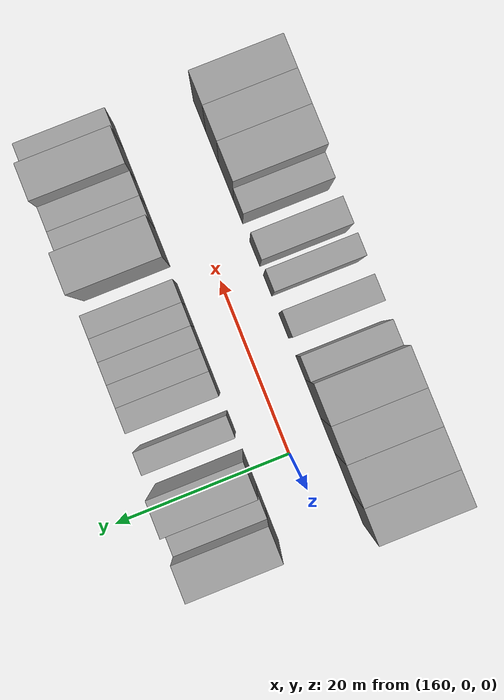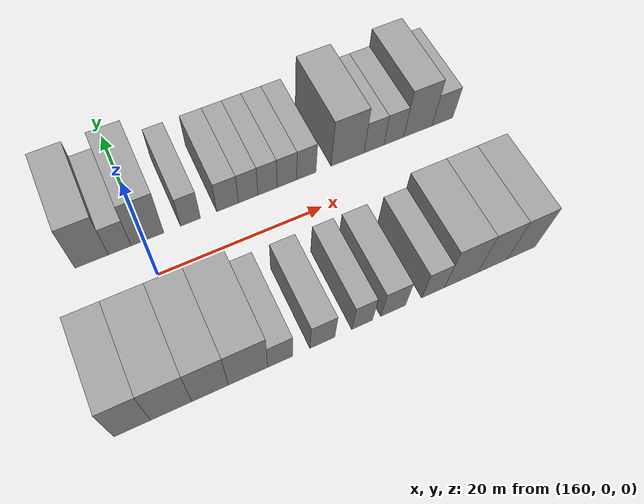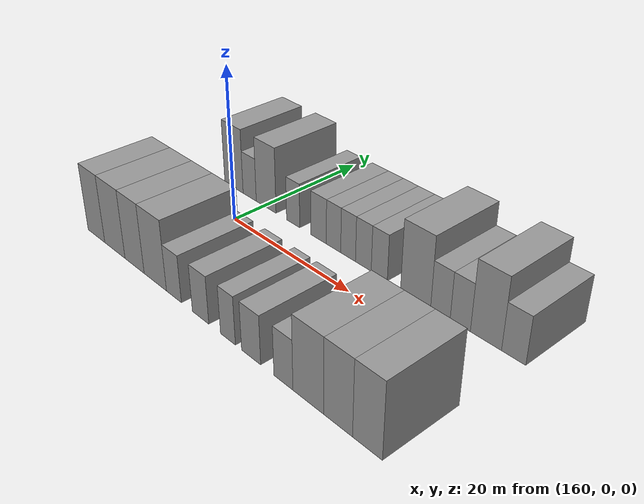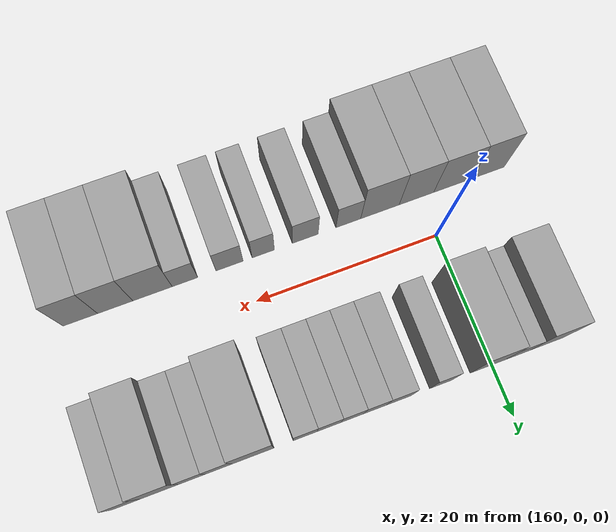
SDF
<sdf version="1.6">
 <world name="default">
  <model name="building_40">
   <static>1</static>
   <pose>153.9296 9.5000 0 0.000000 0.000000 1.570796</pose>
   <link name="link">
    <pose>0 0 4.50 0 0 0</pose>
    <collision name="collision"><geometry><box><size>10.0000 3.8306 9.0000</size></box></geometry></collision>
    <visual name="visual">
     <cast_shadows>0</cast_shadows>
     <geometry><box><size>10.0000 3.8306 9.0000</size></box></geometry>
     <material>
      <script>
       <uri>model://grey_wall/materials/scripts</uri>
       <uri>model://grey_wall/materials/textures</uri>
       <name>vrc/grey_wall</name>
      </script>
     </material>
    </visual>
   </link>
  </model>
  <model name="building_41">
   <static>1</static>
   <pose>157.1748 9.5000 0 0.000000 0.000000 1.570796</pose>
   <link name="link">
    <pose>0 0 3.00 0 0 0</pose>
    <collision name="collision"><geometry><box><size>10.0000 2.6598 6.0000</size></box></geometry></collision>
    <visual name="visual">
     <cast_shadows>0</cast_shadows>
     <geometry><box><size>10.0000 2.6598 6.0000</size></box></geometry>
     <material>
      <script>
       <uri>model://grey_wall/materials/scripts</uri>
       <uri>model://grey_wall/materials/textures</uri>
       <name>vrc/grey_wall</name>
      </script>
     </material>
    </visual>
   </link>
  </model>
  <model name="building_42">
   <static>1</static>
   <pose>160.4369 9.5000 0 0.000000 0.000000 1.570796</pose>
   <link name="link">
    <pose>0 0 4.50 0 0 0</pose>
    <collision name="collision"><geometry><box><size>10.0000 3.8644 9.0000</size></box></geometry></collision>
    <visual name="visual">
     <cast_shadows>0</cast_shadows>
     <geometry><box><size>10.0000 3.8644 9.0000</size></box></geometry>
     <material>
      <script>
       <uri>model://grey_wall/materials/scripts</uri>
       <uri>model://grey_wall/materials/textures</uri>
       <name>vrc/grey_wall</name>
      </script>
     </material>
    </visual>
   </link>
  </model>
  <model name="building_43">
   <static>1</static>
   <pose>165.5835 9.5000 0 0.000000 0.000000 1.570796</pose>
   <link name="link">
    <pose>0 0 3.00 0 0 0</pose>
    <collision name="collision"><geometry><box><size>10.0000 2.4288 6.0000</size></box></geometry></collision>
    <visual name="visual">
     <cast_shadows>0</cast_shadows>
     <geometry><box><size>10.0000 2.4288 6.0000</size></box></geometry>
     <material>
      <script>
       <uri>model://grey_wall/materials/scripts</uri>
       <uri>model://grey_wall/materials/textures</uri>
       <name>vrc/grey_wall</name>
      </script>
     </material>
    </visual>
   </link>
  </model>
  <model name="building_44">
   <static>1</static>
   <pose>170.1487 9.5000 0 0.000000 0.000000 1.570796</pose>
   <link name="link">
    <pose>0 0 3.00 0 0 0</pose>
    <collision name="collision"><geometry><box><size>10.0000 2.7016 6.0000</size></box></geometry></collision>
    <visual name="visual">
     <cast_shadows>0</cast_shadows>
     <geometry><box><size>10.0000 2.7016 6.0000</size></box></geometry>
     <material>
      <script>
       <uri>model://grey_wall/materials/scripts</uri>
       <uri>model://grey_wall/materials/textures</uri>
       <name>vrc/grey_wall</name>
      </script>
     </material>
    </visual>
   </link>
  </model>
  <model name="building_45">
   <static>1</static>
   <pose>172.7226 9.5000 0 0.000000 0.000000 1.570796</pose>
   <link name="link">
    <pose>0 0 3.00 0 0 0</pose>
    <collision name="collision"><geometry><box><size>10.0000 2.4462 6.0000</size></box></geometry></collision>
    <visual name="visual">
     <cast_shadows>0</cast_shadows>
     <geometry><box><size>10.0000 2.4462 6.0000</size></box></geometry>
     <material>
      <script>
       <uri>model://grey_wall/materials/scripts</uri>
       <uri>model://grey_wall/materials/textures</uri>
       <name>vrc/grey_wall</name>
      </script>
     </material>
    </visual>
   </link>
  </model>
  <model name="building_46">
   <static>1</static>
   <pose>175.1632 9.5000 0 0.000000 0.000000 1.570796</pose>
   <link name="link">
    <pose>0 0 3.00 0 0 0</pose>
    <collision name="collision"><geometry><box><size>10.0000 2.4352 6.0000</size></box></geometry></collision>
    <visual name="visual">
     <cast_shadows>0</cast_shadows>
     <geometry><box><size>10.0000 2.4352 6.0000</size></box></geometry>
     <material>
      <script>
       <uri>model://grey_wall/materials/scripts</uri>
       <uri>model://grey_wall/materials/textures</uri>
       <name>vrc/grey_wall</name>
      </script>
     </material>
    </visual>
   </link>
  </model>
  <model name="building_47">
   <static>1</static>
   <pose>177.6382 9.5000 0 0.000000 0.000000 1.570796</pose>
   <link name="link">
    <pose>0 0 3.00 0 0 0</pose>
    <collision name="collision"><geometry><box><size>10.0000 2.5147 6.0000</size></box></geometry></collision>
    <visual name="visual">
     <cast_shadows>0</cast_shadows>
     <geometry><box><size>10.0000 2.5147 6.0000</size></box></geometry>
     <material>
      <script>
       <uri>model://grey_wall/materials/scripts</uri>
       <uri>model://grey_wall/materials/textures</uri>
       <name>vrc/grey_wall</name>
      </script>
     </material>
    </visual>
   </link>
  </model>
  <model name="building_48">
   <static>1</static>
   <pose>180.1481 9.5000 0 0.000000 0.000000 1.570796</pose>
   <link name="link">
    <pose>0 0 3.00 0 0 0</pose>
    <collision name="collision"><geometry><box><size>10.0000 2.5051 6.0000</size></box></geometry></collision>
    <visual name="visual">
     <cast_shadows>0</cast_shadows>
     <geometry><box><size>10.0000 2.5051 6.0000</size></box></geometry>
     <material>
      <script>
       <uri>model://grey_wall/materials/scripts</uri>
       <uri>model://grey_wall/materials/textures</uri>
       <name>vrc/grey_wall</name>
      </script>
     </material>
    </visual>
   </link>
  </model>
  <model name="building_49">
   <static>1</static>
   <pose>185.5850 9.5000 0 0.000000 0.000000 1.570796</pose>
   <link name="link">
    <pose>0 0 4.50 0 0 0</pose>
    <collision name="collision"><geometry><box><size>10.0000 4.3687 9.0000</size></box></geometry></collision>
    <visual name="visual">
     <cast_shadows>0</cast_shadows>
     <geometry><box><size>10.0000 4.3687 9.0000</size></box></geometry>
     <material>
      <script>
       <uri>model://grey_wall/materials/scripts</uri>
       <uri>model://grey_wall/materials/textures</uri>
       <name>vrc/grey_wall</name>
      </script>
     </material>
    </visual>
   </link>
  </model>
  <model name="building_50">
   <static>1</static>
   <pose>189.1171 9.5000 0 0.000000 0.000000 1.570796</pose>
   <link name="link">
    <pose>0 0 3.00 0 0 0</pose>
    <collision name="collision"><geometry><box><size>10.0000 2.6957 6.0000</size></box></geometry></collision>
    <visual name="visual">
     <cast_shadows>0</cast_shadows>
     <geometry><box><size>10.0000 2.6957 6.0000</size></box></geometry>
     <material>
      <script>
       <uri>model://grey_wall/materials/scripts</uri>
       <uri>model://grey_wall/materials/textures</uri>
       <name>vrc/grey_wall</name>
      </script>
     </material>
    </visual>
   </link>
  </model>
  <model name="building_51">
   <static>1</static>
   <pose>191.8119 9.5000 0 0.000000 0.000000 1.570796</pose>
   <link name="link">
    <pose>0 0 3.00 0 0 0</pose>
    <collision name="collision"><geometry><box><size>10.0000 2.6939 6.0000</size></box></geometry></collision>
    <visual name="visual">
     <cast_shadows>0</cast_shadows>
     <geometry><box><size>10.0000 2.6939 6.0000</size></box></geometry>
     <material>
      <script>
       <uri>model://grey_wall/materials/scripts</uri>
       <uri>model://grey_wall/materials/textures</uri>
       <name>vrc/grey_wall</name>
      </script>
     </material>
    </visual>
   </link>
  </model>
  <model name="building_52">
   <static>1</static>
   <pose>195.1478 9.5000 0 0.000000 0.000000 1.570796</pose>
   <link name="link">
    <pose>0 0 4.50 0 0 0</pose>
    <collision name="collision"><geometry><box><size>10.0000 3.9780 9.0000</size></box></geometry></collision>
    <visual name="visual">
     <cast_shadows>0</cast_shadows>
     <geometry><box><size>10.0000 3.9780 9.0000</size></box></geometry>
     <material>
      <script>
       <uri>model://grey_wall/materials/scripts</uri>
       <uri>model://grey_wall/materials/textures</uri>
       <name>vrc/grey_wall</name>
      </script>
     </material>
    </visual>
   </link>
  </model>
  <model name="building_53">
   <static>1</static>
   <pose>198.6172 9.5000 0 0.000000 0.000000 1.570796</pose>
   <link name="link">
    <pose>0 0 3.00 0 0 0</pose>
    <collision name="collision"><geometry><box><size>10.0000 2.9608 6.0000</size></box></geometry></collision>
    <visual name="visual">
     <cast_shadows>0</cast_shadows>
     <geometry><box><size>10.0000 2.9608 6.0000</size></box></geometry>
     <material>
      <script>
       <uri>model://grey_wall/materials/scripts</uri>
       <uri>model://grey_wall/materials/textures</uri>
       <name>vrc/grey_wall</name>
      </script>
     </material>
    </visual>
   </link>
  </model>
  <model name="building_90">
   <static>1</static>
   <pose>152.1089 -9.5000 0 0.000000 0.000000 1.570796</pose>
   <link name="link">
    <pose>0 0 4.50 0 0 0</pose>
    <collision name="collision"><geometry><box><size>10.0000 3.7985 9.0000</size></box></geometry></collision>
    <visual name="visual">
     <cast_shadows>0</cast_shadows>
     <geometry><box><size>10.0000 3.7985 9.0000</size></box></geometry>
     <material>
      <script>
       <uri>model://grey_wall/materials/scripts</uri>
       <uri>model://grey_wall/materials/textures</uri>
       <name>vrc/grey_wall</name>
      </script>
     </material>
    </visual>
   </link>
  </model>
  <model name="building_91">
   <static>1</static>
   <pose>156.2014 -9.5000 0 0.000000 0.000000 1.570796</pose>
   <link name="link">
    <pose>0 0 4.50 0 0 0</pose>
    <collision name="collision"><geometry><box><size>10.0000 4.3866 9.0000</size></box></geometry></collision>
    <visual name="visual">
     <cast_shadows>0</cast_shadows>
     <geometry><box><size>10.0000 4.3866 9.0000</size></box></geometry>
     <material>
      <script>
       <uri>model://grey_wall/materials/scripts</uri>
       <uri>model://grey_wall/materials/textures</uri>
       <name>vrc/grey_wall</name>
      </script>
     </material>
    </visual>
   </link>
  </model>
  <model name="building_92">
   <static>1</static>
   <pose>160.3669 -9.5000 0 0.000000 0.000000 1.570796</pose>
   <link name="link">
    <pose>0 0 4.50 0 0 0</pose>
    <collision name="collision"><geometry><box><size>10.0000 3.9443 9.0000</size></box></geometry></collision>
    <visual name="visual">
     <cast_shadows>0</cast_shadows>
     <geometry><box><size>10.0000 3.9443 9.0000</size></box></geometry>
     <material>
      <script>
       <uri>model://grey_wall/materials/scripts</uri>
       <uri>model://grey_wall/materials/textures</uri>
       <name>vrc/grey_wall</name>
      </script>
     </material>
    </visual>
   </link>
  </model>
  <model name="building_93">
   <static>1</static>
   <pose>164.5272 -9.5000 0 0.000000 0.000000 1.570796</pose>
   <link name="link">
    <pose>0 0 4.50 0 0 0</pose>
    <collision name="collision"><geometry><box><size>10.0000 4.3764 9.0000</size></box></geometry></collision>
    <visual name="visual">
     <cast_shadows>0</cast_shadows>
     <geometry><box><size>10.0000 4.3764 9.0000</size></box></geometry>
     <material>
      <script>
       <uri>model://grey_wall/materials/scripts</uri>
       <uri>model://grey_wall/materials/textures</uri>
       <name>vrc/grey_wall</name>
      </script>
     </material>
    </visual>
   </link>
  </model>
  <model name="building_94">
   <static>1</static>
   <pose>168.1132 -9.5000 0 0.000000 0.000000 1.570796</pose>
   <link name="link">
    <pose>0 0 3.00 0 0 0</pose>
    <collision name="collision"><geometry><box><size>10.0000 2.7956 6.0000</size></box></geometry></collision>
    <visual name="visual">
     <cast_shadows>0</cast_shadows>
     <geometry><box><size>10.0000 2.7956 6.0000</size></box></geometry>
     <material>
      <script>
       <uri>model://grey_wall/materials/scripts</uri>
       <uri>model://grey_wall/materials/textures</uri>
       <name>vrc/grey_wall</name>
      </script>
     </material>
    </visual>
   </link>
  </model>
  <model name="building_95">
   <static>1</static>
   <pose>172.9537 -9.5000 0 0.000000 0.000000 1.570796</pose>
   <link name="link">
    <pose>0 0 3.00 0 0 0</pose>
    <collision name="collision"><geometry><box><size>10.0000 2.8854 6.0000</size></box></geometry></collision>
    <visual name="visual">
     <cast_shadows>0</cast_shadows>
     <geometry><box><size>10.0000 2.8854 6.0000</size></box></geometry>
     <material>
      <script>
       <uri>model://grey_wall/materials/scripts</uri>
       <uri>model://grey_wall/materials/textures</uri>
       <name>vrc/grey_wall</name>
      </script>
     </material>
    </visual>
   </link>
  </model>
  <model name="building_96">
   <static>1</static>
   <pose>177.6258 -9.5000 0 0.000000 0.000000 1.570796</pose>
   <link name="link">
    <pose>0 0 3.00 0 0 0</pose>
    <collision name="collision"><geometry><box><size>10.0000 2.4587 6.0000</size></box></geometry></collision>
    <visual name="visual">
     <cast_shadows>0</cast_shadows>
     <geometry><box><size>10.0000 2.4587 6.0000</size></box></geometry>
     <material>
      <script>
       <uri>model://grey_wall/materials/scripts</uri>
       <uri>model://grey_wall/materials/textures</uri>
       <name>vrc/grey_wall</name>
      </script>
     </material>
    </visual>
   </link>
  </model>
  <model name="building_97">
   <static>1</static>
   <pose>181.3499 -9.5000 0 0.000000 0.000000 1.570796</pose>
   <link name="link">
    <pose>0 0 3.00 0 0 0</pose>
    <collision name="collision"><geometry><box><size>10.0000 2.9895 6.0000</size></box></geometry></collision>
    <visual name="visual">
     <cast_shadows>0</cast_shadows>
     <geometry><box><size>10.0000 2.9895 6.0000</size></box></geometry>
     <material>
      <script>
       <uri>model://grey_wall/materials/scripts</uri>
       <uri>model://grey_wall/materials/textures</uri>
       <name>vrc/grey_wall</name>
      </script>
     </material>
    </visual>
   </link>
  </model>
  <model name="building_98">
   <static>1</static>
   <pose>186.2370 -9.5000 0 0.000000 0.000000 1.570796</pose>
   <link name="link">
    <pose>0 0 3.00 0 0 0</pose>
    <collision name="collision"><geometry><box><size>10.0000 2.7847 6.0000</size></box></geometry></collision>
    <visual name="visual">
     <cast_shadows>0</cast_shadows>
     <geometry><box><size>10.0000 2.7847 6.0000</size></box></geometry>
     <material>
      <script>
       <uri>model://grey_wall/materials/scripts</uri>
       <uri>model://grey_wall/materials/textures</uri>
       <name>vrc/grey_wall</name>
      </script>
     </material>
    </visual>
   </link>
  </model>
  <model name="building_99">
   <static>1</static>
   <pose>189.7633 -9.5000 0 0.000000 0.000000 1.570796</pose>
   <link name="link">
    <pose>0 0 4.50 0 0 0</pose>
    <collision name="collision"><geometry><box><size>10.0000 4.2677 9.0000</size></box></geometry></collision>
    <visual name="visual">
     <cast_shadows>0</cast_shadows>
     <geometry><box><size>10.0000 4.2677 9.0000</size></box></geometry>
     <material>
      <script>
       <uri>model://grey_wall/materials/scripts</uri>
       <uri>model://grey_wall/materials/textures</uri>
       <name>vrc/grey_wall</name>
      </script>
     </material>
    </visual>
   </link>
  </model>
  <model name="building_100">
   <static>1</static>
   <pose>193.7881 -9.5000 0 0.000000 0.000000 1.570796</pose>
   <link name="link">
    <pose>0 0 4.50 0 0 0</pose>
    <collision name="collision"><geometry><box><size>10.0000 3.7820 9.0000</size></box></geometry></collision>
    <visual name="visual">
     <cast_shadows>0</cast_shadows>
     <geometry><box><size>10.0000 3.7820 9.0000</size></box></geometry>
     <material>
      <script>
       <uri>model://grey_wall/materials/scripts</uri>
       <uri>model://grey_wall/materials/textures</uri>
       <name>vrc/grey_wall</name>
      </script>
     </material>
    </visual>
   </link>
  </model>
  <model name="building_101">
   <static>1</static>
   <pose>197.5250 -9.5000 0 0.000000 0.000000 1.570796</pose>
   <link name="link">
    <pose>0 0 4.50 0 0 0</pose>
    <collision name="collision"><geometry><box><size>10.0000 3.6918 9.0000</size></box></geometry></collision>
    <visual name="visual">
     <cast_shadows>0</cast_shadows>
     <geometry><box><size>10.0000 3.6918 9.0000</size></box></geometry>
     <material>
      <script>
       <uri>model://grey_wall/materials/scripts</uri>
       <uri>model://grey_wall/materials/textures</uri>
       <name>vrc/grey_wall</name>
      </script>
     </material>
    </visual>
   </link>
  </model>
 </world>
</sdf>
